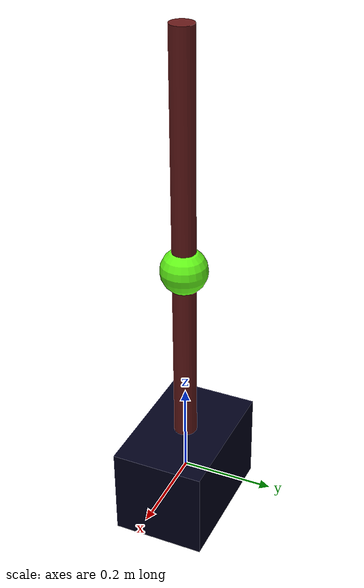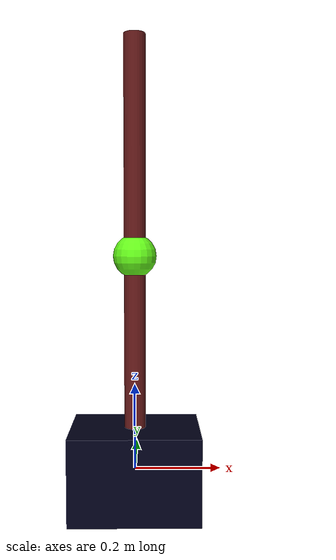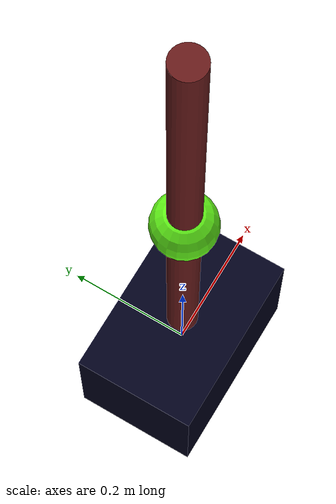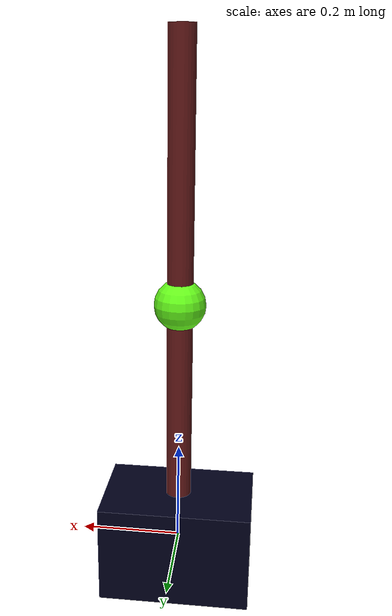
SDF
<?xml version="1.0"?>
<sdf version='1.7'>
  <model name='CartPoleBSA'>
    <!-- This sdf file produces a model based on Barto, Sutton, and Anderson
         in “Neuronlike Adaptive Elements That Can Solve Difficult Learning
         Control Problem”. -->
    <link name='Cart'>
      <pose>0 0 0 0 0 0</pose>
      <inertial>
        <mass>1.0</mass>
        <inertia>
          <ixx>1.0e-20</ixx><iyy>1.0e-20</iyy><izz>1.0e-20</izz>
          <ixy>0</ixy><ixz>0</ixz><iyz>0</iyz>
        </inertia>
      </inertial>

      <visual name='cart_visual'>
        <pose>0 0 0 0 0 0</pose>
        <geometry>
          <box>
            <size>0.3 0.2 0.2</size>
          </box>
        </geometry>
        <material>
          <diffuse>0 0 0.1 1</diffuse>
        </material>
      </visual>
    </link>

    <link name='Pole'>
      <!-- The pole is modeled as a point mass at the middle of a pole. -->
      <!-- The length of the pole is 1.0 meters. -->
      <pose>0 0 0.5 0 0 0</pose>
      <inertial>
        <mass>0.1</mass>
        <inertia>
          <ixx>1.0e-20</ixx><iyy>1.0e-20</iyy><izz>1.0e-20</izz>
          <ixy>0</ixy><ixz>0</ixz><iyz>0</iyz>
        </inertia>
      </inertial>

      <visual name='pole_point_mass'>
        <pose>0 0 0 0 0 0</pose>
        <geometry>
          <sphere>
            <radius>0.05</radius>
          </sphere>
        </geometry>
        <material>
          <diffuse>0.4 1 0.1 1</diffuse>
        </material>
      </visual>
      <visual name='pole_rod'>
        <pose>0 0 0 0 0 0</pose>
        <geometry>
          <cylinder>
            <radius>0.025</radius>
            <length>1.0</length>
          </cylinder>
        </geometry>
        <material>
          <diffuse>0.4 0.1 0.1 1</diffuse>
        </material>
      </visual>
    </link>

    <joint name='CartSlider' type='prismatic'>
      <parent>world</parent>
      <child>Cart</child>
      <axis>
        <xyz>1.0 0.0 0.0</xyz>
        <limit>
          <!-- This joint is actuated. -->
          <effort>10.0</effort>
          <lower>-4.8</lower>
          <upper>4.8</upper>
        </limit>
      </axis>
    </joint>

    <joint name='PolePin' type='revolute'>
      <!-- Pose of the joint frame in the pole's frame (located at the COM) -->
      <pose>0 0 -0.5 0 0 0</pose>
      <parent>Cart</parent>
      <child>Pole</child>
      <axis>
        <xyz>0.0 -1.0 0.0</xyz>
        <limit>
          <!-- This joint is actuated. -->
          <effort>10.0</effort>
        </limit>
      </axis>
    </joint>
  </model>
</sdf>
